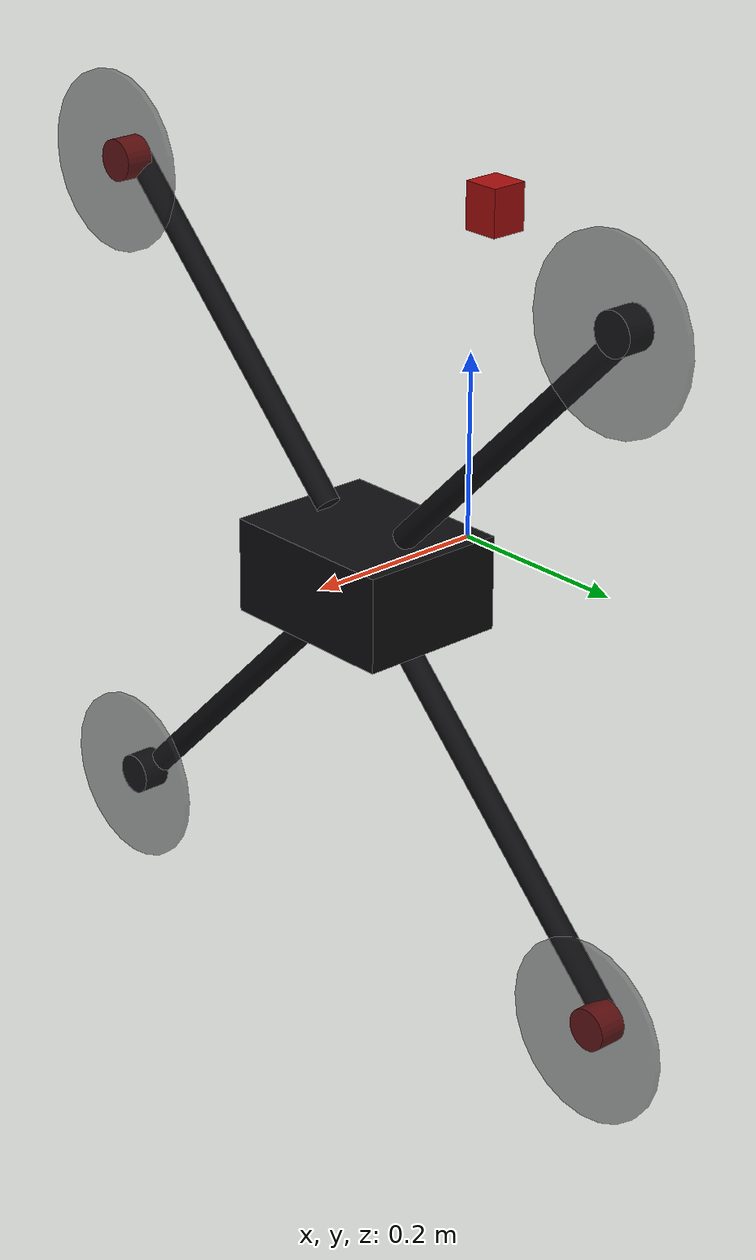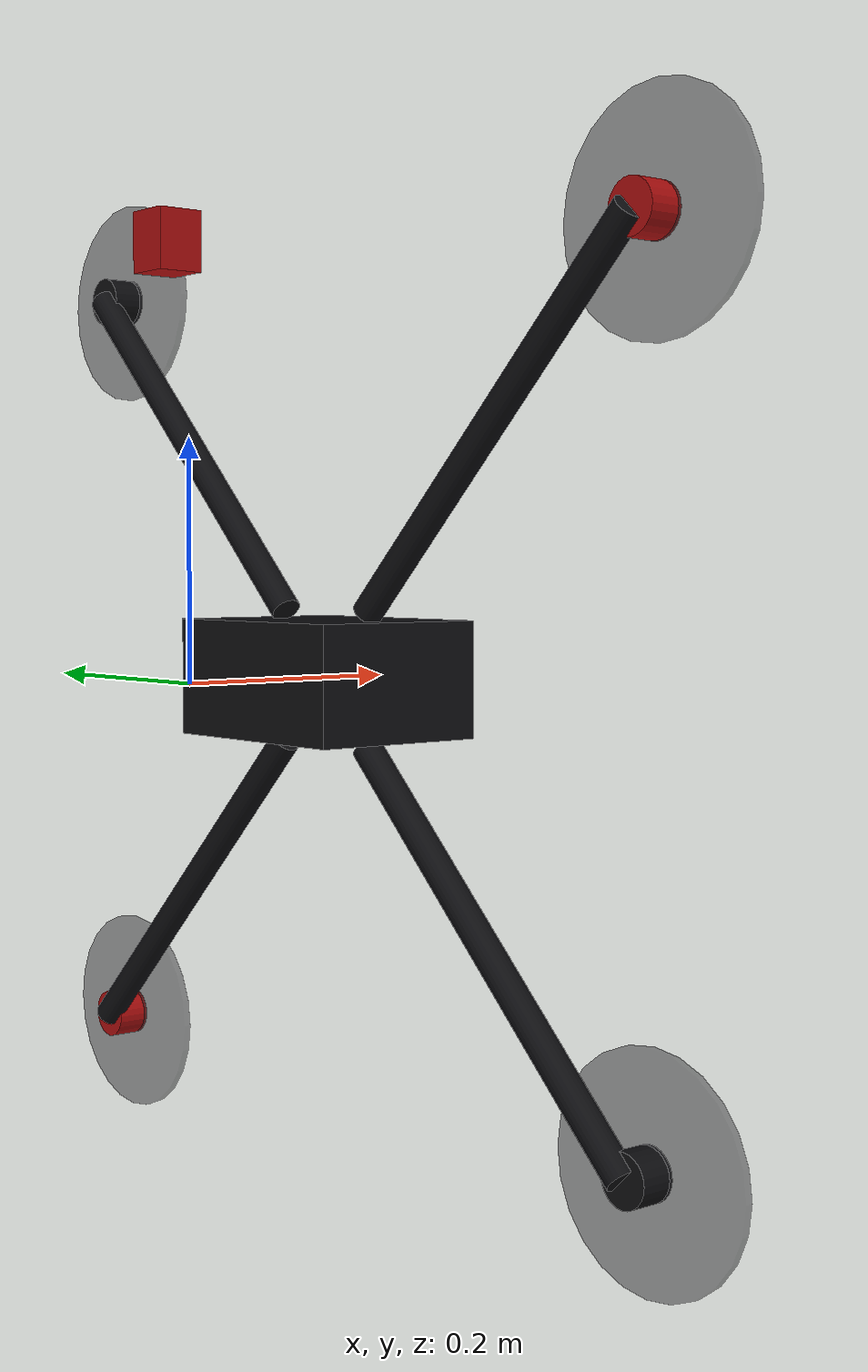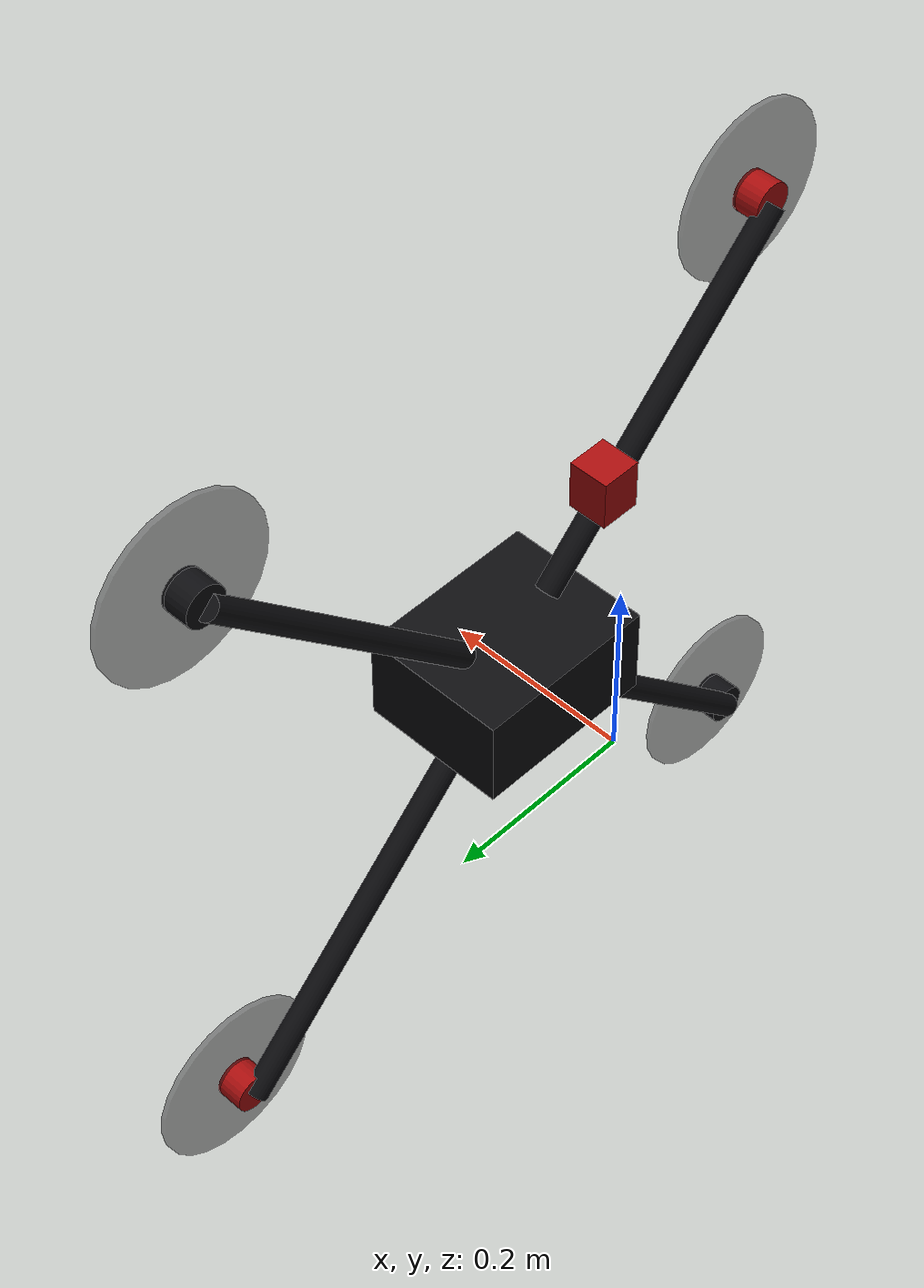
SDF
<?xml version="1.0" encoding="UTF-8"?>
<sdf version='1.9'>
  <model name='fpv_target_markerless'>
    <static>true</static>
    <link name='base'>

      <visual name='body_visual'>
        <pose>0.14 0 0 0 0 -1.570796</pose>
        <geometry>
          <box>
            <size>0.20 0.16 0.10</size>
          </box>
        </geometry>
        <material>
          <ambient>0.03 0.03 0.035 1</ambient>
          <diffuse>0.05 0.05 0.06 1</diffuse>
          <specular>0.25 0.25 0.28 1</specular>
        </material>
      </visual>

      <visual name='arm_ne_visual'>
        <pose>0.14 -0.205061 0.205061 0.785398 0 0</pose>
        <geometry>
          <cylinder>
            <radius>0.013</radius>
            <length>0.42</length>
          </cylinder>
        </geometry>
        <material>
          <ambient>0.03 0.03 0.035 1</ambient>
          <diffuse>0.05 0.05 0.06 1</diffuse>
          <specular>0.25 0.25 0.28 1</specular>
        </material>
      </visual>
      <visual name='arm_se_visual'>
        <pose>0.14 -0.205061 -0.205061 2.356194 0 0</pose>
        <geometry>
          <cylinder>
            <radius>0.013</radius>
            <length>0.42</length>
          </cylinder>
        </geometry>
        <material>
          <ambient>0.03 0.03 0.035 1</ambient>
          <diffuse>0.05 0.05 0.06 1</diffuse>
          <specular>0.25 0.25 0.28 1</specular>
        </material>
      </visual>
      <visual name='arm_sw_visual'>
        <pose>0.14 0.205061 -0.205061 3.926991 0 0</pose>
        <geometry>
          <cylinder>
            <radius>0.013</radius>
            <length>0.42</length>
          </cylinder>
        </geometry>
        <material>
          <ambient>0.03 0.03 0.035 1</ambient>
          <diffuse>0.05 0.05 0.06 1</diffuse>
          <specular>0.25 0.25 0.28 1</specular>
        </material>
      </visual>
      <visual name='arm_nw_visual'>
        <pose>0.14 0.205061 0.205061 5.497787 0 0</pose>
        <geometry>
          <cylinder>
            <radius>0.013</radius>
            <length>0.42</length>
          </cylinder>
        </geometry>
        <material>
          <ambient>0.03 0.03 0.035 1</ambient>
          <diffuse>0.05 0.05 0.06 1</diffuse>
          <specular>0.25 0.25 0.28 1</specular>
        </material>
      </visual>

      <visual name='prop_ne_visual'>
        <pose>0.17 -0.353553 0.353553 0 1.570796 0</pose>
        <geometry>
          <cylinder>
            <radius>0.095</radius>
            <length>0.006</length>
          </cylinder>
        </geometry>
        <transparency>0.5</transparency>
        <material>
          <ambient>0.15 0.15 0.16 1</ambient>
          <diffuse>0.18 0.18 0.19 1</diffuse>
          <specular>0.3 0.3 0.3 1</specular>
        </material>
      </visual>
      <visual name='prop_se_visual'>
        <pose>0.17 -0.353553 -0.353553 0 1.570796 0</pose>
        <geometry>
          <cylinder>
            <radius>0.095</radius>
            <length>0.006</length>
          </cylinder>
        </geometry>
        <transparency>0.5</transparency>
        <material>
          <ambient>0.15 0.15 0.16 1</ambient>
          <diffuse>0.18 0.18 0.19 1</diffuse>
          <specular>0.3 0.3 0.3 1</specular>
        </material>
      </visual>
      <visual name='prop_sw_visual'>
        <pose>0.17 0.353553 -0.353553 0 1.570796 0</pose>
        <geometry>
          <cylinder>
            <radius>0.095</radius>
            <length>0.006</length>
          </cylinder>
        </geometry>
        <transparency>0.5</transparency>
        <material>
          <ambient>0.15 0.15 0.16 1</ambient>
          <diffuse>0.18 0.18 0.19 1</diffuse>
          <specular>0.3 0.3 0.3 1</specular>
        </material>
      </visual>
      <visual name='prop_nw_visual'>
        <pose>0.17 0.353553 0.353553 0 1.570796 0</pose>
        <geometry>
          <cylinder>
            <radius>0.095</radius>
            <length>0.006</length>
          </cylinder>
        </geometry>
        <transparency>0.5</transparency>
        <material>
          <ambient>0.15 0.15 0.16 1</ambient>
          <diffuse>0.18 0.18 0.19 1</diffuse>
          <specular>0.3 0.3 0.3 1</specular>
        </material>
      </visual>

      <!-- 4 motor hubs at the diagonal positions (depth X=0.155). Diagonal
           pair NE/SW painted red as an "enemy" ID accent; SE/NW stay dark
           carbon. -->
      <visual name='hub_ne_visual'>
        <pose>0.155 -0.353553 0.353553 0 1.570796 0</pose>
        <geometry>
          <cylinder>
            <radius>0.022</radius>
            <length>0.03</length>
          </cylinder>
        </geometry>
        <material>
          <ambient>0.25 0.02 0.02 1</ambient>
          <diffuse>0.65 0.05 0.05 1</diffuse>
          <specular>0.3 0.1 0.1 1</specular>
        </material>
      </visual>
      <visual name='hub_se_visual'>
        <pose>0.155 -0.353553 -0.353553 0 1.570796 0</pose>
        <geometry>
          <cylinder>
            <radius>0.022</radius>
            <length>0.03</length>
          </cylinder>
        </geometry>
        <material>
          <ambient>0.03 0.03 0.035 1</ambient>
          <diffuse>0.05 0.05 0.06 1</diffuse>
          <specular>0.25 0.25 0.28 1</specular>
        </material>
      </visual>
      <visual name='hub_sw_visual'>
        <pose>0.155 0.353553 -0.353553 0 1.570796 0</pose>
        <geometry>
          <cylinder>
            <radius>0.022</radius>
            <length>0.03</length>
          </cylinder>
        </geometry>
        <material>
          <ambient>0.25 0.02 0.02 1</ambient>
          <diffuse>0.65 0.05 0.05 1</diffuse>
          <specular>0.3 0.1 0.1 1</specular>
        </material>
      </visual>
      <visual name='hub_nw_visual'>
        <pose>0.155 0.353553 0.353553 0 1.570796 0</pose>
        <geometry>
          <cylinder>
            <radius>0.022</radius>
            <length>0.03</length>
          </cylinder>
        </geometry>
        <material>
          <ambient>0.03 0.03 0.035 1</ambient>
          <diffuse>0.05 0.05 0.06 1</diffuse>
          <specular>0.25 0.25 0.28 1</specular>
        </material>
      </visual>

      <!-- Small camera/antenna nub, red, offset toward the +Y travel
           direction. Reads as an FPV cam pod / antenna. -->
      <visual name='cam_nub_visual'>
        <pose>0 0.03 0.36 0 0 0</pose>
        <geometry>
          <box>
            <size>0.04 0.04 0.05</size>
          </box>
        </geometry>
        <material>
          <ambient>0.25 0.02 0.02 1</ambient>
          <diffuse>0.65 0.05 0.05 1</diffuse>
          <specular>0.3 0.1 0.1 1</specular>
        </material>
      </visual>

    </link>
  </model>
</sdf>
